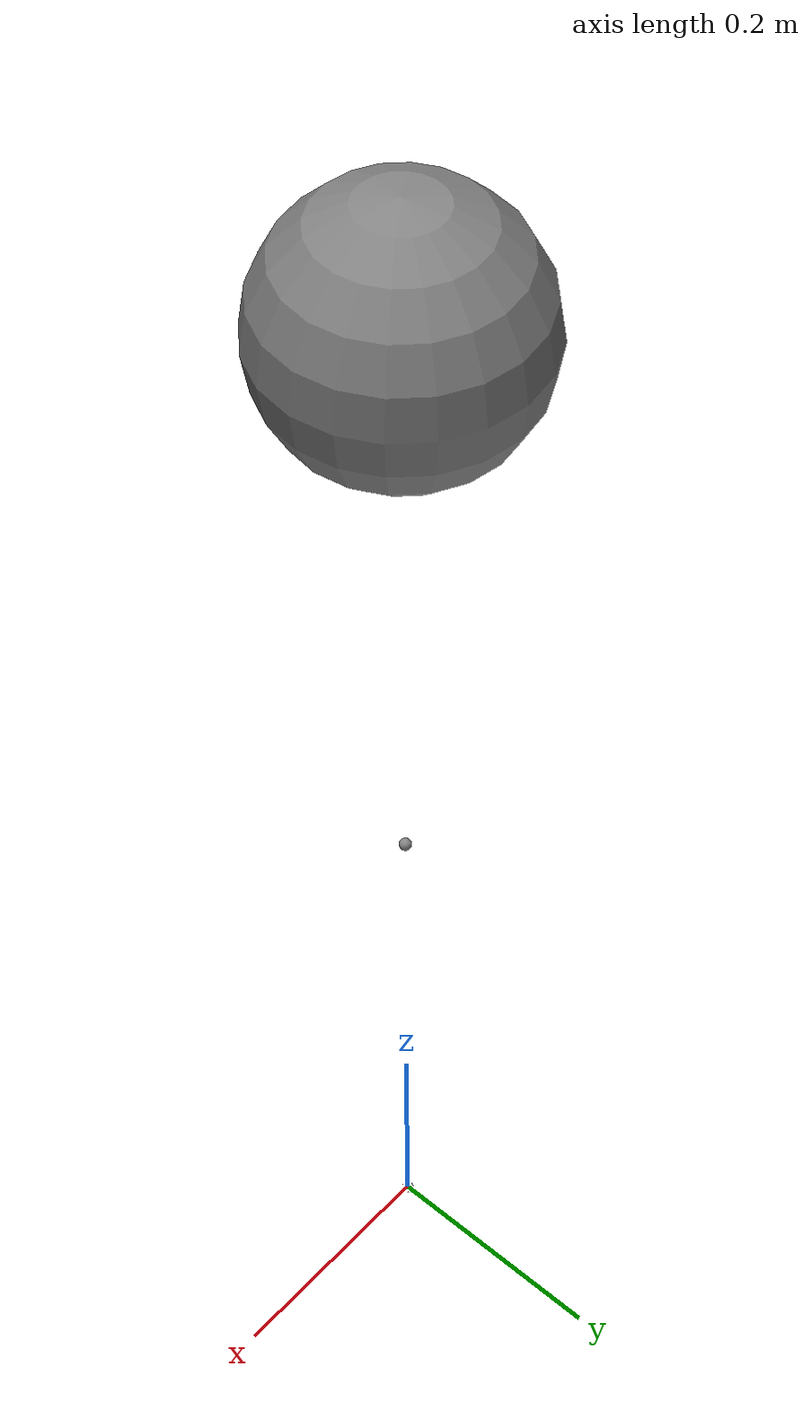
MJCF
<mujoco model="pos_act_site">
            <worldbody>
                <body name="b1" pos="0 0 1">
                    <joint name="j1" type="hinge" axis="0 1 0"/>
                    <geom type="sphere" size="0.1" mass="1.0"/>
                    <site name="ee" pos="0 0 -0.5"/>
                </body>
                <site name="target" pos="0 0 0"/>
            </worldbody>
            <actuator>
                <position name="a1" site="ee" refsite="target" kp="100" gear="0 0 1 0 0 0"/>
            </actuator>
            <sensor>
                <actuatorfrc actuator="a1"/>
            </sensor>
        </mujoco>
